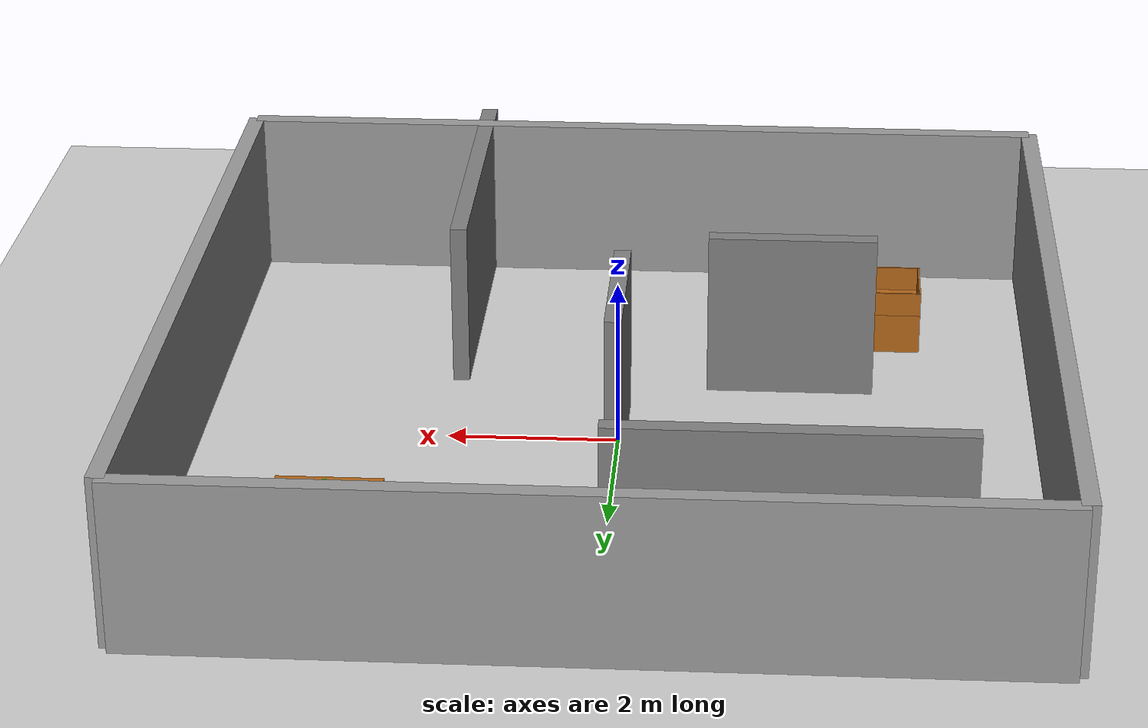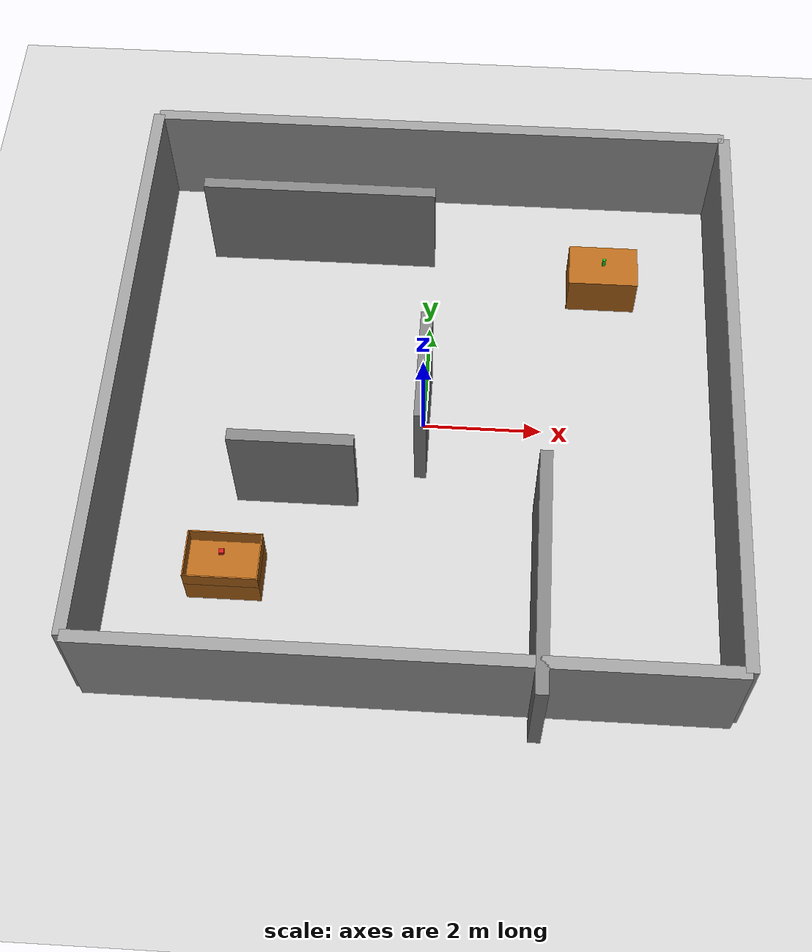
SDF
<?xml version="1.0" ?>
<sdf version="1.8">
  <world name="simple_maze">
    <!-- Physics Plugin -->
    <plugin
      filename="gz-sim-physics-system"
      name="gz::sim::systems::Physics">
    </plugin>
    <!-- User Commands Plugin -->
    <plugin
      filename="gz-sim-user-commands-system"
      name="gz::sim::systems::UserCommands">
    </plugin>
    <!-- Scene Broadcaster Plugin -->
    <plugin
      filename="gz-sim-scene-broadcaster-system"
      name="gz::sim::systems::SceneBroadcaster">
    </plugin>
    <!-- Sensors Plugin -->
    <plugin
      filename="gz-sim-sensors-system"
      name="gz::sim::systems::Sensors">
      <render_engine>ogre2</render_engine>
    </plugin>

    <!-- Global light source -->
    <light type="directional" name="sun">
      <cast_shadows>true</cast_shadows>
      <pose>0 0 10 0 0 0</pose>
      <diffuse>0.8 0.8 0.8 1</diffuse>
      <specular>0.2 0.2 0.2 1</specular>
      <attenuation>
        <range>1000</range>
        <constant>0.9</constant>
        <linear>0.01</linear>
        <quadratic>0.001</quadratic>
      </attenuation>
      <direction>-0.5 0.1 -0.9</direction>
    </light>

    <!-- Ground Plane -->
    <model name="ground_plane">
      <static>true</static>
      <link name="link">
        <collision name="collision">
          <geometry>
            <plane>
              <normal>0 0 1</normal>
              <size>100 100</size>
            </plane>
          </geometry>
          <surface>
            <friction>
              <ode>
                <mu>100</mu>
                <mu2>50</mu2>
              </ode>
            </friction>
          </surface>
        </collision>
        <visual name="visual">
          <geometry>
            <plane>
              <normal>0 0 1</normal>
              <size>100 100</size>
            </plane>
          </geometry>
          <material>
            <ambient>0.8 0.8 0.8 1</ambient>
            <diffuse>0.8 0.8 0.8 1</diffuse>
            <specular>0.8 0.8 0.8 1</specular>
          </material>
        </visual>
      </link>
    </model>

    <!-- Outer Walls (10m x 10m square) -->
    <!-- North Wall -->
    <model name="outer_wall_north">
      <static>true</static>
      <pose>5.0 0.0 1.0 0 0 0</pose>
      <link name="link">
        <collision name="collision">
          <geometry>
            <box>
              <size>0.2 10.0 2.0</size>
            </box>
          </geometry>
        </collision>
        <visual name="visual">
          <geometry>
            <box>
              <size>0.2 10.0 2.0</size>
            </box>
          </geometry>
          <material>
            <ambient>0.6 0.6 0.6 1</ambient>
            <diffuse>0.6 0.6 0.6 1</diffuse>
            <specular>0.3 0.3 0.3 1</specular>
          </material>
        </visual>
      </link>
    </model>

    <!-- South Wall -->
    <model name="outer_wall_south">
      <static>true</static>
      <pose>-5.0 0.0 1.0 0 0 0</pose>
      <link name="link">
        <collision name="collision">
          <geometry>
            <box>
              <size>0.2 10.0 2.0</size>
            </box>
          </geometry>
        </collision>
        <visual name="visual">
          <geometry>
            <box>
              <size>0.2 10.0 2.0</size>
            </box>
          </geometry>
          <material>
            <ambient>0.6 0.6 0.6 1</ambient>
            <diffuse>0.6 0.6 0.6 1</diffuse>
            <specular>0.3 0.3 0.3 1</specular>
          </material>
        </visual>
      </link>
    </model>

    <!-- East Wall -->
    <model name="outer_wall_east">
      <static>true</static>
      <pose>0.0 5.0 1.0 0 0 0</pose>
      <link name="link">
        <collision name="collision">
          <geometry>
            <box>
              <size>10.0 0.2 2.0</size>
            </box>
          </geometry>
        </collision>
        <visual name="visual">
          <geometry>
            <box>
              <size>10.0 0.2 2.0</size>
            </box>
          </geometry>
          <material>
            <ambient>0.6 0.6 0.6 1</ambient>
            <diffuse>0.6 0.6 0.6 1</diffuse>
            <specular>0.3 0.3 0.3 1</specular>
          </material>
        </visual>
      </link>
    </model>

    <!-- West Wall -->
    <model name="outer_wall_west">
      <static>true</static>
      <pose>0.0 -5.0 1.0 0 0 0</pose>
      <link name="link">
        <collision name="collision">
          <geometry>
            <box>
              <size>10.0 0.2 2.0</size>
            </box>
          </geometry>
        </collision>
        <visual name="visual">
          <geometry>
            <box>
              <size>10.0 0.2 2.0</size>
            </box>
          </geometry>
          <material>
            <ambient>0.6 0.6 0.6 1</ambient>
            <diffuse>0.6 0.6 0.6 1</diffuse>
            <specular>0.3 0.3 0.3 1</specular>
          </material>
        </visual>
      </link>
    </model>

    <!-- Inner Maze Walls -->
    <!-- Wall 1 -->
    <model name="inner_wall_1">
      <static>true</static>
      <pose>-2.0 3.5 1.0 0 0 0</pose>
      <link name="link">
        <collision name="collision">
          <geometry>
            <box>
              <size>4.0 0.2 2.0</size>
            </box>
          </geometry>
        </collision>
        <visual name="visual">
          <geometry>
            <box>
              <size>4.0 0.2 2.0</size>
            </box>
          </geometry>
          <material>
            <ambient>0.5 0.5 0.5 1</ambient>
            <diffuse>0.5 0.5 0.5 1</diffuse>
            <specular>0.2 0.2 0.2 1</specular>
          </material>
        </visual>
      </link>
    </model>

    <!-- Wall 2 -->
    <model name="inner_wall_2">
      <static>true</static>
      <pose>2.0 -3.5 1.0 0 0 0</pose>
      <link name="link">
        <collision name="collision">
          <geometry>
            <box>
              <size>0.2 4.0 2.0</size>
            </box>
          </geometry>
        </collision>
        <visual name="visual">
          <geometry>
            <box>
              <size>0.2 4.0 2.0</size>
            </box>
          </geometry>
          <material>
            <ambient>0.5 0.5 0.5 1</ambient>
            <diffuse>0.5 0.5 0.5 1</diffuse>
            <specular>0.2 0.2 0.2 1</specular>
          </material>
        </visual>
      </link>
    </model>

    <!-- Wall 3 -->
    <model name="inner_wall_3">
      <static>true</static>
      <pose>0.0 0.0 1.0 0 0 0</pose>
      <link name="link">
        <collision name="collision">
          <geometry>
            <box>
              <size>0.2 2.0 2.0</size>
            </box>
          </geometry>
        </collision>
        <visual name="visual">
          <geometry>
            <box>
              <size>0.2 2.0 2.0</size>
            </box>
          </geometry>
          <material>
            <ambient>0.5 0.5 0.5 1</ambient>
            <diffuse>0.5 0.5 0.5 1</diffuse>
            <specular>0.2 0.2 0.2 1</specular>
          </material>
        </visual>
      </link>
    </model>

    <!-- Wall 4 -->
    <model name="inner_wall_4">
      <static>true</static>
      <pose>-2.0 -1.5 1.0 0 0 0</pose>
      <link name="link">
        <collision name="collision">
          <geometry>
            <box>
              <size>2.0 0.2 2.0</size>
            </box>
          </geometry>
        </collision>
        <visual name="visual">
          <geometry>
            <box>
              <size>2.0 0.2 2.0</size>
            </box>
          </geometry>
          <material>
            <ambient>0.5 0.5 0.5 1</ambient>
            <diffuse>0.5 0.5 0.5 1</diffuse>
            <specular>0.2 0.2 0.2 1</specular>
          </material>
        </visual>
      </link>
    </model>

    <!-- Pick-and-Place Tables -->
    <!-- Table 1 (Pick Location) -->
    <model name="pick_table">
      <static>true</static>
      <pose>3.0 3.0 0.4 0 0 0</pose>
      <link name="link">
        <collision name="collision">
          <geometry>
            <box>
              <size>1.2 0.8 0.8</size>
            </box>
          </geometry>
        </collision>
        <visual name="visual">
          <geometry>
            <box>
              <size>1.2 0.8 0.8</size>
            </box>
          </geometry>
          <material>
            <ambient>0.7 0.4 0.1 1</ambient>
            <diffuse>0.7 0.4 0.1 1</diffuse>
            <specular>0.5 0.5 0.5 1</specular>
          </material>
        </visual>
      </link>
    </model>

    <!-- Table 2 (Place Location): top-open container -->
    <model name="place_table">
      <static>true</static>
      <pose>-3.0 -3.0 0.4 0 0 0</pose>
      <link name="link">
        <!-- Bottom base block: height 0.5m (z_world from 0.0 to 0.5) -->
        <collision name="base_col">
          <pose>0 0 -0.15 0 0 0</pose>
          <geometry><box><size>1.2 0.8 0.5</size></box></geometry>
        </collision>
        <visual name="base_vis">
          <pose>0 0 -0.15 0 0 0</pose>
          <geometry><box><size>1.2 0.8 0.5</size></box></geometry>
          <material><ambient>0.7 0.4 0.1 1</ambient><diffuse>0.7 0.4 0.1 1</diffuse><specular>0.5 0.5 0.5 1</specular></material>
        </visual>

        <!-- North wall: thickness 0.02m (y_world from -2.62 to -2.60, height 0.30m) -->
        <collision name="north_wall_col">
          <pose>0 0.39 0.25 0 0 0</pose>
          <geometry><box><size>1.2 0.02 0.3</size></box></geometry>
        </collision>
        <visual name="north_wall_vis">
          <pose>0 0.39 0.25 0 0 0</pose>
          <geometry><box><size>1.2 0.02 0.3</size></box></geometry>
          <material><ambient>0.7 0.4 0.1 1</ambient><diffuse>0.7 0.4 0.1 1</diffuse><specular>0.5 0.5 0.5 1</specular></material>
        </visual>

        <!-- South wall: thickness 0.02m (y_world from -3.40 to -3.38, height 0.30m) -->
        <collision name="south_wall_col">
          <pose>0 -0.39 0.25 0 0 0</pose>
          <geometry><box><size>1.2 0.02 0.3</size></box></geometry>
        </collision>
        <visual name="south_wall_vis">
          <pose>0 -0.39 0.25 0 0 0</pose>
          <geometry><box><size>1.2 0.02 0.3</size></box></geometry>
          <material><ambient>0.7 0.4 0.1 1</ambient><diffuse>0.7 0.4 0.1 1</diffuse><specular>0.5 0.5 0.5 1</specular></material>
        </visual>

        <!-- East wall: thickness 0.02m (x_world from -2.42 to -2.40, height 0.30m) -->
        <collision name="east_wall_col">
          <pose>0.59 0 0.25 0 0 0</pose>
          <geometry><box><size>0.02 0.76 0.3</size></box></geometry>
        </collision>
        <visual name="east_wall_vis">
          <pose>0.59 0 0.25 0 0 0</pose>
          <geometry><box><size>0.02 0.76 0.3</size></box></geometry>
          <material><ambient>0.7 0.4 0.1 1</ambient><diffuse>0.7 0.4 0.1 1</diffuse><specular>0.5 0.5 0.5 1</specular></material>
        </visual>

        <!-- West wall: thickness 0.02m (x_world from -3.60 to -3.58, height 0.30m) -->
        <collision name="west_wall_col">
          <pose>-0.59 0 0.25 0 0 0</pose>
          <geometry><box><size>0.02 0.76 0.3</size></box></geometry>
        </collision>
        <visual name="west_wall_vis">
          <pose>-0.59 0 0.25 0 0 0</pose>
          <geometry><box><size>0.02 0.76 0.3</size></box></geometry>
          <material><ambient>0.7 0.4 0.1 1</ambient><diffuse>0.7 0.4 0.1 1</diffuse><specular>0.5 0.5 0.5 1</specular></material>
        </visual>
      </link>
    </model>

    <!-- Small Objects on Tables -->
    <!-- Object 1 (Cylinder on Pick Table) -->
    <model name="object_cylinder">
      <static>false</static>
      <pose>3.0 3.0 0.9 0 0 0</pose>
      <link name="link">
        <inertial>
          <mass>0.2</mass>
          <inertia>
            <ixx>0.0001</ixx> <ixy>0</ixy> <ixz>0</ixz>
            <iyy>0.0001</iyy> <iyz>0</iyz>
            <izz>0.0001</izz>
          </inertia>
        </inertial>
        <collision name="collision">
          <geometry>
            <cylinder>
              <radius>0.03</radius>
              <length>0.15</length>
            </cylinder>
          </geometry>
        </collision>
        <visual name="visual">
          <geometry>
            <cylinder>
              <radius>0.03</radius>
              <length>0.15</length>
            </cylinder>
          </geometry>
          <material>
            <ambient>0.1 0.8 0.1 1</ambient>
            <diffuse>0.1 0.8 0.1 1</diffuse>
            <specular>0.5 0.5 0.5 1</specular>
          </material>
        </visual>
      </link>
    </model>

    <!-- Object 2 (Box on Place Table) -->
    <model name="object_box">
      <static>false</static>
      <pose>-3.0 -3.0 0.9 0 0 0</pose>
      <link name="link">
        <inertial>
          <mass>0.2</mass>
          <inertia>
            <ixx>0.0001</ixx> <ixy>0</ixy> <ixz>0</ixz>
            <iyy>0.0001</iyy> <iyz>0</iyz>
            <izz>0.0001</izz>
          </inertia>
        </inertial>
        <collision name="collision">
          <geometry>
            <box>
              <size>0.08 0.08 0.08</size>
            </box>
          </geometry>
        </collision>
        <visual name="visual">
          <geometry>
            <box>
              <size>0.08 0.08 0.08</size>
            </box>
          </geometry>
          <material>
            <ambient>0.8 0.1 0.1 1</ambient>
            <diffuse>0.8 0.1 0.1 1</diffuse>
            <specular>0.5 0.5 0.5 1</specular>
          </material>
        </visual>
      </link>
    </model>

  </world>
</sdf>
